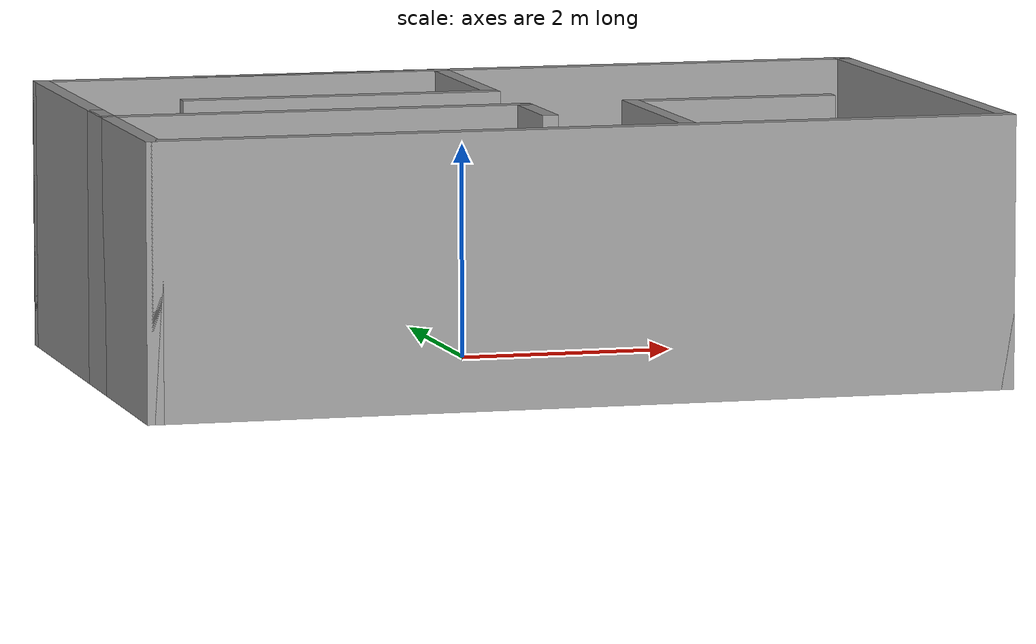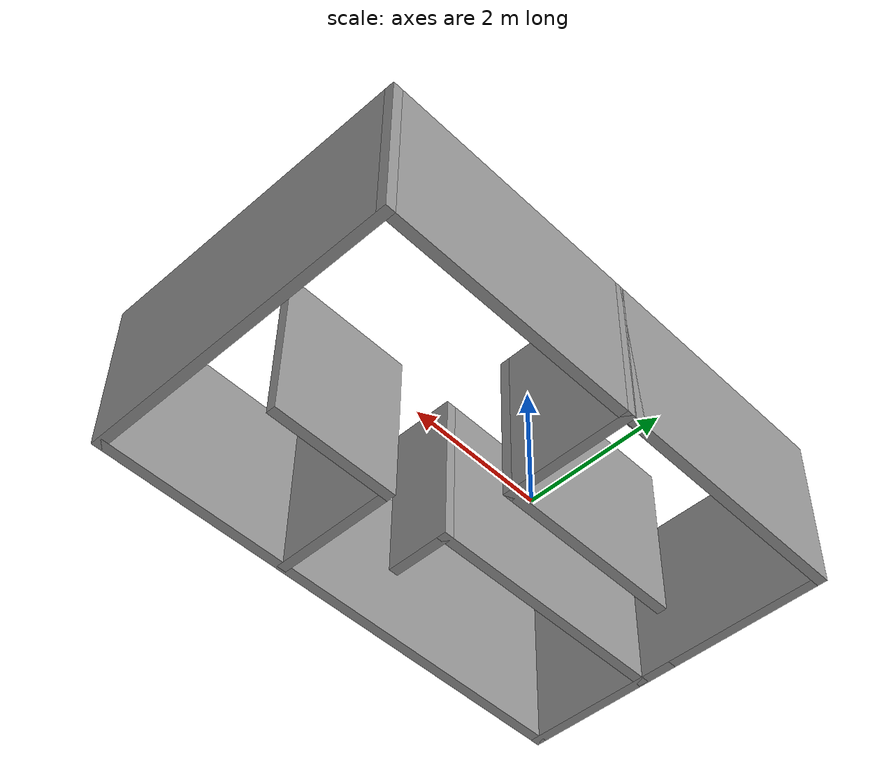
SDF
<?xml version='1.0'?>
<sdf version='1.7'>
  <model name='Room'>
    <pose>0.316081 -0.687935 0 0 -0 0</pose>
    <link name='Wall_0'>
      <collision name='Wall_0_Collision'>
        <geometry>
          <box>
            <size>8 0.15 2.5</size>
          </box>
        </geometry>
        <pose>0 0 1.25 0 -0 0</pose>
      </collision>
      <visual name='Wall_0_Visual'>
        <pose>0 0 1.25 0 -0 0</pose>
        <geometry>
          <box>
            <size>8 0.15 2.5</size>
          </box>
        </geometry>
        <material>
          <script>
            <uri>file://media/materials/scripts/gazebo.material</uri>
            <name>Gazebo/Grey</name>
          </script>
          <ambient>1 1 1 1</ambient>
        </material>
        <meta>
          <layer>0</layer>
        </meta>
      </visual>
      <pose>0 -2.425 0 0 -0 0</pose>
    </link>
    <link name='Wall_1'>
      <collision name='Wall_1_Collision'>
        <geometry>
          <box>
            <size>5 0.15 2.5</size>
          </box>
        </geometry>
        <pose>0 0 1.25 0 -0 0</pose>
      </collision>
      <visual name='Wall_1_Visual'>
        <pose>0 0 1.25 0 -0 0</pose>
        <geometry>
          <box>
            <size>5 0.15 2.5</size>
          </box>
        </geometry>
        <material>
          <script>
            <uri>file://media/materials/scripts/gazebo.material</uri>
            <name>Gazebo/Grey</name>
          </script>
          <ambient>1 1 1 1</ambient>
        </material>
        <meta>
          <layer>0</layer>
        </meta>
      </visual>
      <pose>3.925 0 0 0 -0 1.5708</pose>
    </link>
    <link name='Wall_11'>
      <collision name='Wall_11_Collision'>
        <geometry>
          <box>
            <size>3 0.15 2.5</size>
          </box>
        </geometry>
        <pose>0 0 1.25 0 -0 0</pose>
      </collision>
      <visual name='Wall_11_Visual'>
        <pose>0 0 1.25 0 -0 0</pose>
        <geometry>
          <box>
            <size>3 0.15 2.5</size>
          </box>
        </geometry>
        <material>
          <script>
            <uri>file://media/materials/scripts/gazebo.material</uri>
            <name>Gazebo/Grey</name>
          </script>
          <ambient>1 1 1 1</ambient>
        </material>
        <meta>
          <layer>0</layer>
        </meta>
      </visual>
      <pose>-1.5 0.575 0 0 -0 3.14159</pose>
    </link>
    <link name='Wall_16'>
      <collision name='Wall_16_Collision'>
        <geometry>
          <box>
            <size>2 0.15 2.5</size>
          </box>
        </geometry>
        <pose>0 0 1.25 0 -0 0</pose>
      </collision>
      <visual name='Wall_16_Visual'>
        <pose>0 0 1.25 0 -0 0</pose>
        <geometry>
          <box>
            <size>2 0.15 2.5</size>
          </box>
        </geometry>
        <material>
          <script>
            <uri>file://media/materials/scripts/gazebo.material</uri>
            <name>Gazebo/Grey</name>
          </script>
          <ambient>1 1 1 1</ambient>
        </material>
        <meta>
          <layer>0</layer>
        </meta>
      </visual>
      <pose>0.968005 -1.46357 0 0 -0 1.5708</pose>
    </link>
    <link name='Wall_17'>
      <collision name='Wall_17_Collision'>
        <geometry>
          <box>
            <size>2 0.15 2.5</size>
          </box>
        </geometry>
        <pose>0 0 1.25 0 -0 0</pose>
      </collision>
      <visual name='Wall_17_Visual'>
        <pose>0 0 1.25 0 -0 0</pose>
        <geometry>
          <box>
            <size>2 0.15 2.5</size>
          </box>
        </geometry>
        <material>
          <script>
            <uri>file://media/materials/scripts/gazebo.material</uri>
            <name>Gazebo/Grey</name>
          </script>
          <ambient>1 1 1 1</ambient>
        </material>
        <meta>
          <layer>0</layer>
        </meta>
      </visual>
      <pose>1.89301 -0.538568 0 0 -0 0</pose>
    </link>
    <link name='Wall_2'>
      <collision name='Wall_2_Collision'>
        <geometry>
          <box>
            <size>8 0.15 2.5</size>
          </box>
        </geometry>
        <pose>0 0 1.25 0 -0 0</pose>
      </collision>
      <visual name='Wall_2_Visual'>
        <pose>0 0 1.25 0 -0 0</pose>
        <geometry>
          <box>
            <size>8 0.15 2.5</size>
          </box>
        </geometry>
        <material>
          <script>
            <uri>file://media/materials/scripts/gazebo.material</uri>
            <name>Gazebo/Grey</name>
          </script>
          <ambient>1 1 1 1</ambient>
        </material>
        <meta>
          <layer>0</layer>
        </meta>
      </visual>
      <pose>0 2.425 0 0 -0 3.14159</pose>
    </link>
    <link name='Wall_25'>
      <collision name='Wall_25_Collision'>
        <geometry>
          <box>
            <size>1 0.15 2.5</size>
          </box>
        </geometry>
        <pose>0 0 1.25 0 -0 0</pose>
      </collision>
      <visual name='Wall_25_Visual'>
        <pose>0 0 1.25 0 -0 0</pose>
        <geometry>
          <box>
            <size>1 0.15 2.5</size>
          </box>
        </geometry>
        <material>
          <script>
            <uri>file://media/materials/scripts/gazebo.material</uri>
            <name>Gazebo/Grey</name>
          </script>
          <ambient>1 1 1 1</ambient>
        </material>
        <meta>
          <layer>0</layer>
        </meta>
      </visual>
      <pose>-0.058606 -0.965322 0 0 -0 1.5708</pose>
    </link>
    <link name='Wall_26'>
      <collision name='Wall_26_Collision'>
        <geometry>
          <box>
            <size>4 0.15 2.5</size>
          </box>
        </geometry>
        <pose>0 0 1.25 0 -0 0</pose>
      </collision>
      <visual name='Wall_26_Visual'>
        <pose>0 0 1.25 0 -0 0</pose>
        <geometry>
          <box>
            <size>4 0.15 2.5</size>
          </box>
        </geometry>
        <material>
          <script>
            <uri>file://media/materials/scripts/gazebo.material</uri>
            <name>Gazebo/Grey</name>
          </script>
          <ambient>1 1 1 1</ambient>
        </material>
        <meta>
          <layer>0</layer>
        </meta>
      </visual>
      <pose>-1.98361 -0.540321 0 0 -0 3.14159</pose>
    </link>
    <link name='Wall_3'>
      <collision name='Wall_3_Collision'>
        <geometry>
          <box>
            <size>5 0.15 2.5</size>
          </box>
        </geometry>
        <pose>0 0 1.25 0 -0 0</pose>
      </collision>
      <visual name='Wall_3_Visual'>
        <pose>0 0 1.25 0 -0 0</pose>
        <geometry>
          <box>
            <size>5 0.15 2.5</size>
          </box>
        </geometry>
        <material>
          <script>
            <uri>file://media/materials/scripts/gazebo.material</uri>
            <name>Gazebo/Grey</name>
          </script>
          <ambient>1 1 1 1</ambient>
        </material>
        <meta>
          <layer>0</layer>
        </meta>
      </visual>
      <pose>-3.925 0 0 0 -0 -1.5708</pose>
    </link>
    <link name='Wall_5'>
      <collision name='Wall_5_Collision'>
        <geometry>
          <box>
            <size>4 0.15 2.5</size>
          </box>
        </geometry>
        <pose>0 0 1.25 0 -0 0</pose>
      </collision>
      <visual name='Wall_5_Visual'>
        <pose>0 0 1.25 0 -0 0</pose>
        <geometry>
          <box>
            <size>4 0.15 2.5</size>
          </box>
        </geometry>
        <material>
          <script>
            <uri>file://media/materials/scripts/gazebo.material</uri>
            <name>Gazebo/Grey</name>
          </script>
          <ambient>1 1 1 1</ambient>
        </material>
        <meta>
          <layer>0</layer>
        </meta>
      </visual>
      <pose>-2 2.425 0 0 -0 0</pose>
    </link>
    <link name='Wall_6'>
      <collision name='Wall_6_Collision'>
        <geometry>
          <box>
            <size>2 0.15 2.5</size>
          </box>
        </geometry>
        <pose>0 0 1.25 0 -0 0</pose>
      </collision>
      <visual name='Wall_6_Visual'>
        <pose>0 0 1.25 0 -0 0</pose>
        <geometry>
          <box>
            <size>2 0.15 2.5</size>
          </box>
        </geometry>
        <material>
          <script>
            <uri>file://media/materials/scripts/gazebo.material</uri>
            <name>Gazebo/Grey</name>
          </script>
          <ambient>1 1 1 1</ambient>
        </material>
        <meta>
          <layer>0</layer>
        </meta>
      </visual>
      <pose>-0.075 1.5 0 0 -0 -1.5708</pose>
    </link>
    <link name='Wall_9'>
      <collision name='Wall_9_Collision'>
        <geometry>
          <box>
            <size>2.5 0.15 2.5</size>
          </box>
        </geometry>
        <pose>0 0 1.25 0 -0 0</pose>
      </collision>
      <visual name='Wall_9_Visual'>
        <pose>0 0 1.25 0 -0 0</pose>
        <geometry>
          <box>
            <size>2.5 0.15 2.5</size>
          </box>
        </geometry>
        <material>
          <script>
            <uri>file://media/materials/scripts/gazebo.material</uri>
            <name>Gazebo/Grey</name>
          </script>
          <ambient>1 1 1 1</ambient>
        </material>
        <meta>
          <layer>0</layer>
        </meta>
      </visual>
      <pose>-3.925 -1.25 0 0 -0 1.5708</pose>
    </link>
    <static>1</static>
  </model>
</sdf>
